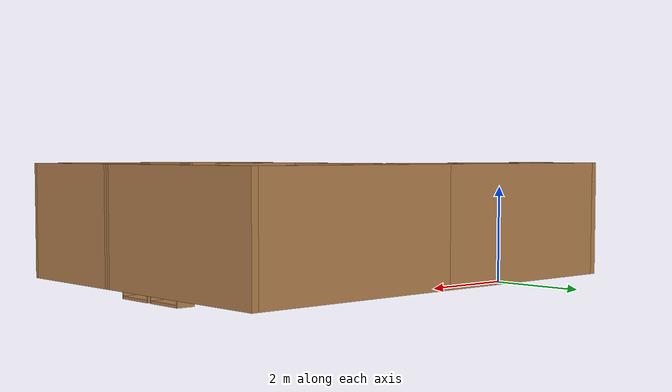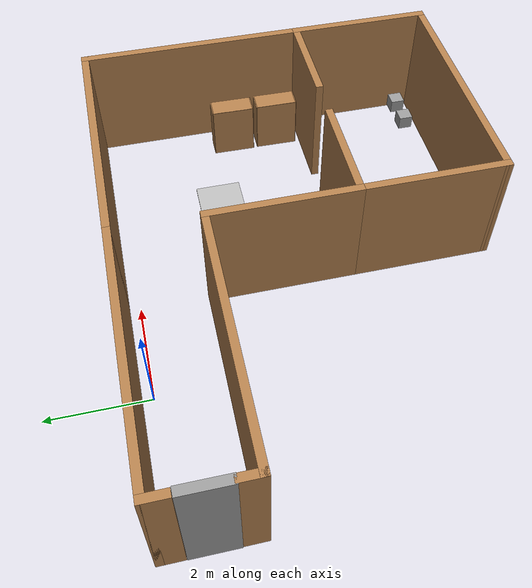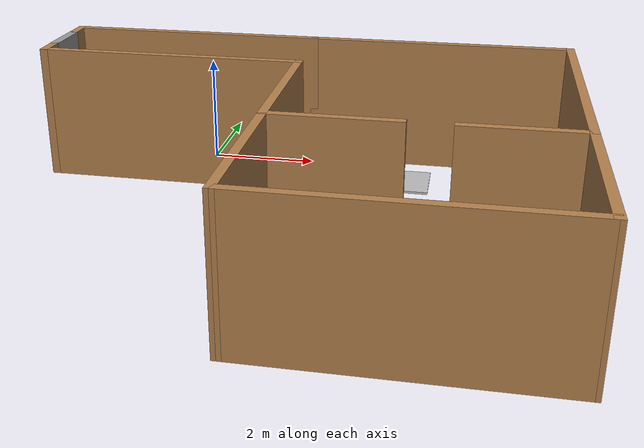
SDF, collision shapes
<?xml version='1.0'?>
<sdf version='1.7'>
  <model name='Environment'>
    <pose>2 -2.5 0 0 -0 0</pose>
    <link name='Door_0'>
      <collision name='Door_0_Collision'>
        <geometry>
          <box>
            <size>0.9 0.17 2.5</size>
          </box>
        </geometry>
        <pose>0 0 1.25 0 -0 0</pose>
      </collision>
      <visual name='Door_0_Visual'>
        <pose>0 0 1.25 0 -0 0</pose>
        <geometry>
          <box>
            <size>0.9 0.17 2.5</size>
          </box>
        </geometry>
        <material>
          <script>
            <uri>file://media/materials/scripts/gazebo.material</uri>
            <name>Gazebo/Grey</name>
          </script>
        </material>
      </visual>
      <pose>-4.84821 1.90659 0 0 -0 1.56538</pose>
    </link>
    <link name='Wall_0'>
      <collision name='Wall_0_Collision'>
        <geometry>
          <box>
            <size>5 0.15 2.5</size>
          </box>
        </geometry>
        <pose>0 0 1.25 0 -0 0</pose>
      </collision>
      <visual name='Wall_0_Visual'>
        <pose>0 0 1.25 0 -0 0</pose>
        <geometry>
          <box>
            <size>5 0.15 2.5</size>
          </box>
        </geometry>
        <material>
          <script>
            <uri>file://media/materials/scripts/gazebo.material</uri>
            <name>Gazebo/Wood</name>
          </script>
          <ambient>1 1 1 1</ambient>
        </material>
        <meta>
          <layer>0</layer>
        </meta>
      </visual>
      <pose>-2.42514 2.78822 0 0 -0 0</pose>
    </link>
    <link name='Wall_11'>
      <collision name='Wall_11_Collision'>
        <geometry>
          <box>
            <size>3 0.15 2.5</size>
          </box>
        </geometry>
        <pose>0 0 1.25 0 -0 0</pose>
      </collision>
      <visual name='Wall_11_Visual'>
        <pose>0 0 1.25 0 -0 0</pose>
        <geometry>
          <box>
            <size>3 0.15 2.5</size>
          </box>
        </geometry>
        <material>
          <script>
            <uri>file://media/materials/scripts/gazebo.material</uri>
            <name>Gazebo/Wood</name>
          </script>
          <ambient>1 1 1 1</ambient>
        </material>
        <meta>
          <layer>0</layer>
        </meta>
      </visual>
      <pose>0.000787 -0.348201 0 0 -0 -1.5708</pose>
    </link>
    <link name='Wall_12'>
      <collision name='Wall_12_Collision'>
        <geometry>
          <box>
            <size>2.25 0.15 2.5</size>
          </box>
        </geometry>
        <pose>0 0 1.25 0 -0 0</pose>
      </collision>
      <visual name='Wall_12_Visual'>
        <pose>0 0 1.25 0 -0 0</pose>
        <geometry>
          <box>
            <size>2.25 0.15 2.5</size>
          </box>
        </geometry>
        <material>
          <script>
            <uri>file://media/materials/scripts/gazebo.material</uri>
            <name>Gazebo/Wood</name>
          </script>
          <ambient>1 1 1 1</ambient>
        </material>
        <meta>
          <layer>0</layer>
        </meta>
      </visual>
      <pose>1.05082 -1.77299 0 0 -0 0.000202</pose>
    </link>
    <link name='Wall_14'>
      <collision name='Wall_14_Collision'>
        <geometry>
          <box>
            <size>4.71 0.15 2.5</size>
          </box>
        </geometry>
        <pose>0 0 1.25 0 -0 0</pose>
      </collision>
      <visual name='Wall_14_Visual'>
        <pose>0 0 1.25 0 -0 0</pose>
        <geometry>
          <box>
            <size>4.71 0.15 2.5</size>
          </box>
        </geometry>
        <material>
          <script>
            <uri>file://media/materials/scripts/gazebo.material</uri>
            <name>Gazebo/Wood</name>
          </script>
          <ambient>1 1 1 1</ambient>
        </material>
        <meta>
          <layer>0</layer>
        </meta>
      </visual>
      <pose>4.84986 0.508223 0 0 -0 -1.5708</pose>
    </link>
    <link name='Wall_16'>
      <collision name='Wall_16_Collision'>
        <geometry>
          <box>
            <size>2.04903 0.15 2.5</size>
          </box>
        </geometry>
        <pose>0 0 1.25 0 -0 0</pose>
      </collision>
      <visual name='Wall_16_Visual'>
        <pose>0 0 1.25 0 -0 0</pose>
        <geometry>
          <box>
            <size>2.04903 0.15 2.5</size>
          </box>
        </geometry>
        <material>
          <script>
            <uri>file://media/materials/scripts/gazebo.material</uri>
            <name>Gazebo/Wood</name>
          </script>
          <ambient>1 1 1 1</ambient>
        </material>
        <meta>
          <layer>0</layer>
        </meta>
      </visual>
      <pose>3.90036 -1.77528 0 0 -0 0.003686</pose>
    </link>
    <link name='Wall_19'>
      <collision name='Wall_19_Collision'>
        <geometry>
          <box>
            <size>3 0.15 2.5</size>
          </box>
        </geometry>
        <pose>0 0 1.25 0 -0 0</pose>
      </collision>
      <visual name='Wall_19_Visual'>
        <pose>0 0 1.25 0 -0 0</pose>
        <geometry>
          <box>
            <size>3 0.15 2.5</size>
          </box>
        </geometry>
        <material>
          <script>
            <uri>file://media/materials/scripts/gazebo.material</uri>
            <name>Gazebo/Wood</name>
          </script>
          <ambient>1 1 1 1</ambient>
        </material>
        <meta>
          <layer>0</layer>
        </meta>
      </visual>
      <pose>0.000787 -3.1982 0 0 -0 -1.5708</pose>
    </link>
    <link name='Wall_2'>
      <collision name='Wall_2_Collision'>
        <geometry>
          <box>
            <size>0.5 0.15 2.5</size>
          </box>
        </geometry>
        <pose>0 0 1.25 0 -0 0</pose>
      </collision>
      <visual name='Wall_2_Visual'>
        <pose>0 0 1.25 0 -0 0</pose>
        <geometry>
          <box>
            <size>0.5 0.15 2.5</size>
          </box>
        </geometry>
        <material>
          <script>
            <uri>file://media/materials/scripts/gazebo.material</uri>
            <name>Gazebo/Wood</name>
          </script>
          <ambient>1 1 1 1</ambient>
        </material>
        <meta>
          <layer>0</layer>
        </meta>
      </visual>
      <pose>-4.85014 2.61322 0 0 -0 -1.5708</pose>
    </link>
    <link name='Wall_21'>
      <collision name='Wall_21_Collision'>
        <geometry>
          <box>
            <size>3 0.15 2.5</size>
          </box>
        </geometry>
        <pose>0 0 1.25 0 -0 0</pose>
      </collision>
      <visual name='Wall_21_Visual'>
        <pose>0 0 1.25 0 -0 0</pose>
        <geometry>
          <box>
            <size>3 0.15 2.5</size>
          </box>
        </geometry>
        <material>
          <script>
            <uri>file://media/materials/scripts/gazebo.material</uri>
            <name>Gazebo/Wood</name>
          </script>
          <ambient>1 1 1 1</ambient>
        </material>
        <meta>
          <layer>0</layer>
        </meta>
      </visual>
      <pose>4.84986 -3.19678 0 0 -0 -1.5708</pose>
    </link>
    <link name='Wall_22'>
      <collision name='Wall_22_Collision'>
        <geometry>
          <box>
            <size>4.99907 0.15 2.5</size>
          </box>
        </geometry>
        <pose>0 0 1.25 0 -0 0</pose>
      </collision>
      <visual name='Wall_22_Visual'>
        <pose>0 0 1.25 0 -0 0</pose>
        <geometry>
          <box>
            <size>4.99907 0.15 2.5</size>
          </box>
        </geometry>
        <material>
          <script>
            <uri>file://media/materials/scripts/gazebo.material</uri>
            <name>Gazebo/Wood</name>
          </script>
          <ambient>1 1 1 1</ambient>
        </material>
        <meta>
          <layer>0</layer>
        </meta>
      </visual>
      <pose>2.42532 -4.62249 0 0 -0 -3.1413</pose>
    </link>
    <link name='Wall_4'>
      <collision name='Wall_4_Collision'>
        <geometry>
          <box>
            <size>0.5 0.15 2.5</size>
          </box>
        </geometry>
        <pose>0 0 1.25 0 -0 0</pose>
      </collision>
      <visual name='Wall_4_Visual'>
        <pose>0 0 1.25 0 -0 0</pose>
        <geometry>
          <box>
            <size>0.5 0.15 2.5</size>
          </box>
        </geometry>
        <material>
          <script>
            <uri>file://media/materials/scripts/gazebo.material</uri>
            <name>Gazebo/Wood</name>
          </script>
          <ambient>1 1 1 1</ambient>
        </material>
        <meta>
          <layer>0</layer>
        </meta>
      </visual>
      <pose>-4.84921 1.2518 0 0 -0 -1.5708</pose>
    </link>
    <link name='Wall_6'>
      <collision name='Wall_6_Collision'>
        <geometry>
          <box>
            <size>5 0.15 2.5</size>
          </box>
        </geometry>
        <pose>0 0 1.25 0 -0 0</pose>
      </collision>
      <visual name='Wall_6_Visual'>
        <pose>0 0 1.25 0 -0 0</pose>
        <geometry>
          <box>
            <size>5 0.15 2.5</size>
          </box>
        </geometry>
        <material>
          <script>
            <uri>file://media/materials/scripts/gazebo.material</uri>
            <name>Gazebo/Wood</name>
          </script>
          <ambient>1 1 1 1</ambient>
        </material>
        <meta>
          <layer>0</layer>
        </meta>
      </visual>
      <pose>-2.42421 1.0768 0 0 -0 0</pose>
    </link>
    <link name='Wall_8'>
      <collision name='Wall_8_Collision'>
        <geometry>
          <box>
            <size>5 0.15 2.5</size>
          </box>
        </geometry>
        <pose>0 0 1.25 0 -0 0</pose>
      </collision>
      <visual name='Wall_8_Visual'>
        <pose>0 0 1.25 0 -0 0</pose>
        <geometry>
          <box>
            <size>5 0.15 2.5</size>
          </box>
        </geometry>
        <material>
          <script>
            <uri>file://media/materials/scripts/gazebo.material</uri>
            <name>Gazebo/Wood</name>
          </script>
          <ambient>1 1 1 1</ambient>
        </material>
        <meta>
          <layer>0</layer>
        </meta>
      </visual>
      <pose>2.42486 2.78822 0 0 -0 0</pose>
    </link>
    <link name='link_0'>
      <inertial>
        <mass>2.49674</mass>
        <inertia>
          <ixx>1.50505</ixx>
          <ixy>0</ixy>
          <ixz>0</ixz>
          <iyy>0.416123</iyy>
          <iyz>0</iyz>
          <izz>1.50505</izz>
        </inertia>
        <pose>0 0 0 0 -0 0</pose>
      </inertial>
      <pose>0.6 -0.3 0.3 0 -0 0</pose>
      <visual name='visual'>
        <pose>0 0 0 0 -0 0</pose>
        <geometry>
          <box>
            <size>1 2.49673 1</size>
          </box>
        </geometry>
        <material>
          <lighting>1</lighting>
          <script>
            <uri>file://media/materials/scripts/gazebo.material</uri>
            <name>Gazebo/Grey</name>
          </script>
          <shader type='pixel'/>
        </material>
        <transparency>0</transparency>
        <cast_shadows>1</cast_shadows>
      </visual>
      <collision name='collision'>
        <laser_retro>0</laser_retro>
        <max_contacts>10</max_contacts>
        <pose>0 0 0 0 -0 0</pose>
        <geometry>
          <box>
            <size>1 2.49673 1</size>
          </box>
        </geometry>
        <surface>
          <friction>
            <ode>
              <mu>1</mu>
              <mu2>1</mu2>
              <fdir1>0 0 0</fdir1>
              <slip1>0</slip1>
              <slip2>0</slip2>
            </ode>
            <torsional>
              <coefficient>1</coefficient>
              <patch_radius>0</patch_radius>
              <surface_radius>0</surface_radius>
              <use_patch_radius>1</use_patch_radius>
              <ode>
                <slip>0</slip>
              </ode>
            </torsional>
          </friction>
          <bounce>
            <restitution_coefficient>0</restitution_coefficient>
            <threshold>1e+06</threshold>
          </bounce>
          <contact>
            <collide_without_contact>0</collide_without_contact>
            <collide_without_contact_bitmask>1</collide_without_contact_bitmask>
            <collide_bitmask>1</collide_bitmask>
            <ode>
              <soft_cfm>0</soft_cfm>
              <soft_erp>0.2</soft_erp>
              <kp>1e+13</kp>
              <kd>1</kd>
              <max_vel>0.01</max_vel>
              <min_depth>0</min_depth>
            </ode>
            <bullet>
              <split_impulse>1</split_impulse>
              <split_impulse_penetration_threshold>-0.01</split_impulse_penetration_threshold>
              <soft_cfm>0</soft_cfm>
              <soft_erp>0.2</soft_erp>
              <kp>1e+13</kp>
              <kd>1</kd>
            </bullet>
          </contact>
        </surface>
      </collision>
    </link>
    <link name='link_1'>
      <inertial>
        <mass>2.54806</mass>
        <inertia>
          <ixx>1.59096</ixx>
          <ixy>0</ixy>
          <ixz>0</ixz>
          <iyy>0.424677</iyy>
          <iyz>0</iyz>
          <izz>1.59096</izz>
        </inertia>
        <pose>0 0 0 0 -0 0</pose>
      </inertial>
      <pose>0.6 -3.06019 0.3 0 -0 0</pose>
      <visual name='visual'>
        <pose>0 0 0 0 -0 0</pose>
        <geometry>
          <box>
            <size>1 2.54805 1</size>
          </box>
        </geometry>
        <material>
          <lighting>1</lighting>
          <script>
            <uri>file://media/materials/scripts/gazebo.material</uri>
            <name>Gazebo/Grey</name>
          </script>
          <shader type='pixel'/>
        </material>
        <transparency>0</transparency>
        <cast_shadows>1</cast_shadows>
      </visual>
      <collision name='collision'>
        <laser_retro>0</laser_retro>
        <max_contacts>10</max_contacts>
        <pose>0 0 0 0 -0 0</pose>
        <geometry>
          <box>
            <size>1 2.54805 1</size>
          </box>
        </geometry>
        <surface>
          <friction>
            <ode>
              <mu>1</mu>
              <mu2>1</mu2>
              <fdir1>0 0 0</fdir1>
              <slip1>0</slip1>
              <slip2>0</slip2>
            </ode>
            <torsional>
              <coefficient>1</coefficient>
              <patch_radius>0</patch_radius>
              <surface_radius>0</surface_radius>
              <use_patch_radius>1</use_patch_radius>
              <ode>
                <slip>0</slip>
              </ode>
            </torsional>
          </friction>
          <bounce>
            <restitution_coefficient>0</restitution_coefficient>
            <threshold>1e+06</threshold>
          </bounce>
          <contact>
            <collide_without_contact>0</collide_without_contact>
            <collide_without_contact_bitmask>1</collide_without_contact_bitmask>
            <collide_bitmask>1</collide_bitmask>
            <ode>
              <soft_cfm>0</soft_cfm>
              <soft_erp>0.2</soft_erp>
              <kp>1e+13</kp>
              <kd>1</kd>
              <max_vel>0.01</max_vel>
              <min_depth>0</min_depth>
            </ode>
            <bullet>
              <split_impulse>1</split_impulse>
              <split_impulse_penetration_threshold>-0.01</split_impulse_penetration_threshold>
              <soft_cfm>0</soft_cfm>
              <soft_erp>0.2</soft_erp>
              <kp>1e+13</kp>
              <kd>1</kd>
            </bullet>
          </contact>
        </surface>
      </collision>
    </link>
    <model name='bookshelf'>
      <static>1</static>
      <link name='link'>
        <inertial>
          <mass>1</mass>
        </inertial>
        <collision name='back'>
          <pose>0 0.005 0.6 0 -0 0</pose>
          <geometry>
            <box>
              <size>0.9 0.01 1.2</size>
            </box>
          </geometry>
        </collision>
        <visual name='visual1'>
          <pose>0 0.005 0.6 0 -0 0</pose>
          <geometry>
            <box>
              <size>0.9 0.01 1.2</size>
            </box>
          </geometry>
          <material>
            <script>
              <uri>file://media/materials/scripts/gazebo.material</uri>
              <name>Gazebo/Wood</name>
            </script>
          </material>
        </visual>
        <collision name='left_side'>
          <pose>0.45 -0.195 0.6 0 -0 0</pose>
          <geometry>
            <box>
              <size>0.02 0.4 1.2</size>
            </box>
          </geometry>
        </collision>
        <visual name='visual2'>
          <pose>0.45 -0.195 0.6 0 -0 0</pose>
          <geometry>
            <box>
              <size>0.02 0.4 1.2</size>
            </box>
          </geometry>
          <material>
            <script>
              <uri>file://media/materials/scripts/gazebo.material</uri>
              <name>Gazebo/Wood</name>
            </script>
          </material>
        </visual>
        <collision name='right_side'>
          <pose>-0.45 -0.195 0.6 0 -0 0</pose>
          <geometry>
            <box>
              <size>0.02 0.4 1.2</size>
            </box>
          </geometry>
        </collision>
        <visual name='visual3'>
          <pose>-0.45 -0.195 0.6 0 -0 0</pose>
          <geometry>
            <box>
              <size>0.02 0.4 1.2</size>
            </box>
          </geometry>
          <material>
            <script>
              <uri>file://media/materials/scripts/gazebo.material</uri>
              <name>Gazebo/Wood</name>
            </script>
          </material>
        </visual>
        <collision name='bottom'>
          <pose>0 -0.195 0.03 0 -0 0</pose>
          <geometry>
            <box>
              <size>0.88 0.4 0.06</size>
            </box>
          </geometry>
        </collision>
        <visual name='visual4'>
          <pose>0 -0.195 0.03 0 -0 0</pose>
          <geometry>
            <box>
              <size>0.88 0.4 0.06</size>
            </box>
          </geometry>
          <material>
            <script>
              <uri>file://media/materials/scripts/gazebo.material</uri>
              <name>Gazebo/Wood</name>
            </script>
          </material>
        </visual>
        <collision name='top'>
          <pose>0 -0.195 1.19 0 -0 0</pose>
          <geometry>
            <box>
              <size>0.88 0.4 0.02</size>
            </box>
          </geometry>
        </collision>
        <visual name='visual5'>
          <pose>0 -0.195 1.19 0 -0 0</pose>
          <geometry>
            <box>
              <size>0.88 0.4 0.02</size>
            </box>
          </geometry>
          <material>
            <script>
              <uri>file://media/materials/scripts/gazebo.material</uri>
              <name>Gazebo/Wood</name>
            </script>
          </material>
        </visual>
        <collision name='low_shelf'>
          <pose>0 -0.195 0.43 0 -0 0</pose>
          <geometry>
            <box>
              <size>0.88 0.4 0.02</size>
            </box>
          </geometry>
        </collision>
        <visual name='visual6'>
          <pose>0 -0.195 0.43 0 -0 0</pose>
          <geometry>
            <box>
              <size>0.88 0.4 0.02</size>
            </box>
          </geometry>
          <material>
            <script>
              <uri>file://media/materials/scripts/gazebo.material</uri>
              <name>Gazebo/Wood</name>
            </script>
          </material>
        </visual>
        <collision name='high_shelf'>
          <pose>0 -0.195 0.8 0 -0 0</pose>
          <geometry>
            <box>
              <size>0.88 0.4 0.02</size>
            </box>
          </geometry>
        </collision>
        <visual name='visual7'>
          <pose>0 -0.195 0.8 0 -0 0</pose>
          <geometry>
            <box>
              <size>0.88 0.4 0.02</size>
            </box>
          </geometry>
          <material>
            <script>
              <uri>file://media/materials/scripts/gazebo.material</uri>
              <name>Gazebo/Wood</name>
            </script>
          </material>
        </visual>
      </link>
      <pose>4.25 -1.2 -0.2 0 -0 1.55614</pose>
    </model>
    <model name='bookshelf_clone'>
      <static>1</static>
      <link name='link'>
        <inertial>
          <mass>1</mass>
        </inertial>
        <collision name='back'>
          <pose>0 0.005 0.6 0 -0 0</pose>
          <geometry>
            <box>
              <size>0.9 0.01 1.2</size>
            </box>
          </geometry>
        </collision>
        <visual name='visual1'>
          <pose>0 0.005 0.6 0 -0 0</pose>
          <geometry>
            <box>
              <size>0.9 0.01 1.2</size>
            </box>
          </geometry>
          <material>
            <script>
              <uri>file://media/materials/scripts/gazebo.material</uri>
              <name>Gazebo/Wood</name>
            </script>
          </material>
        </visual>
        <collision name='left_side'>
          <pose>0.45 -0.195 0.6 0 -0 0</pose>
          <geometry>
            <box>
              <size>0.02 0.4 1.2</size>
            </box>
          </geometry>
        </collision>
        <visual name='visual2'>
          <pose>0.45 -0.195 0.6 0 -0 0</pose>
          <geometry>
            <box>
              <size>0.02 0.4 1.2</size>
            </box>
          </geometry>
          <material>
            <script>
              <uri>file://media/materials/scripts/gazebo.material</uri>
              <name>Gazebo/Wood</name>
            </script>
          </material>
        </visual>
        <collision name='right_side'>
          <pose>-0.45 -0.195 0.6 0 -0 0</pose>
          <geometry>
            <box>
              <size>0.02 0.4 1.2</size>
            </box>
          </geometry>
        </collision>
        <visual name='visual3'>
          <pose>-0.45 -0.195 0.6 0 -0 0</pose>
          <geometry>
            <box>
              <size>0.02 0.4 1.2</size>
            </box>
          </geometry>
          <material>
            <script>
              <uri>file://media/materials/scripts/gazebo.material</uri>
              <name>Gazebo/Wood</name>
            </script>
          </material>
        </visual>
        <collision name='bottom'>
          <pose>0 -0.195 0.03 0 -0 0</pose>
          <geometry>
            <box>
              <size>0.88 0.4 0.06</size>
            </box>
          </geometry>
        </collision>
        <visual name='visual4'>
          <pose>0 -0.195 0.03 0 -0 0</pose>
          <geometry>
            <box>
              <size>0.88 0.4 0.06</size>
            </box>
          </geometry>
          <material>
            <script>
              <uri>file://media/materials/scripts/gazebo.material</uri>
              <name>Gazebo/Wood</name>
            </script>
          </material>
        </visual>
        <collision name='top'>
          <pose>0 -0.195 1.19 0 -0 0</pose>
          <geometry>
            <box>
              <size>0.88 0.4 0.02</size>
            </box>
          </geometry>
        </collision>
        <visual name='visual5'>
          <pose>0 -0.195 1.19 0 -0 0</pose>
          <geometry>
            <box>
              <size>0.88 0.4 0.02</size>
            </box>
          </geometry>
          <material>
            <script>
              <uri>file://media/materials/scripts/gazebo.material</uri>
              <name>Gazebo/Wood</name>
            </script>
          </material>
        </visual>
        <collision name='low_shelf'>
          <pose>0 -0.195 0.43 0 -0 0</pose>
          <geometry>
            <box>
              <size>0.88 0.4 0.02</size>
            </box>
          </geometry>
        </collision>
        <visual name='visual6'>
          <pose>0 -0.195 0.43 0 -0 0</pose>
          <geometry>
            <box>
              <size>0.88 0.4 0.02</size>
            </box>
          </geometry>
          <material>
            <script>
              <uri>file://media/materials/scripts/gazebo.material</uri>
              <name>Gazebo/Wood</name>
            </script>
          </material>
        </visual>
        <collision name='high_shelf'>
          <pose>0 -0.195 0.8 0 -0 0</pose>
          <geometry>
            <box>
              <size>0.88 0.4 0.02</size>
            </box>
          </geometry>
        </collision>
        <visual name='visual7'>
          <pose>0 -0.195 0.8 0 -0 0</pose>
          <geometry>
            <box>
              <size>0.88 0.4 0.02</size>
            </box>
          </geometry>
          <material>
            <script>
              <uri>file://media/materials/scripts/gazebo.material</uri>
              <name>Gazebo/Wood</name>
            </script>
          </material>
        </visual>
      </link>
      <pose>4.25 -0.2 -0.2 0 -0 1.55614</pose>
    </model>
    <model name='cafe_table'>
      <static>1</static>
      <link name='link'>
        <collision name='surface'>
          <pose>0 0 0.755 0 -0 0</pose>
          <geometry>
            <box>
              <size>0.913 0.913 0.04</size>
            </box>
          </geometry>
        </collision>
        <collision name='column'>
          <pose>0 0 0.37 0 -0 0</pose>
          <geometry>
            <box>
              <size>0.042 0.042 0.74</size>
            </box>
          </geometry>
        </collision>
        <collision name='base'>
          <pose>0 0 0.02 0 -0 0</pose>
          <geometry>
            <box>
              <size>0.56 0.56 0.04</size>
            </box>
          </geometry>
        </collision>
        <visual name='visual'>
          <geometry>
            <mesh>
              <uri>model://cafe_table/meshes/cafe_table.dae</uri>
            </mesh>
          </geometry>
        </visual>
      </link>
      <pose>2 0.5 -0.2 0 -0 0</pose>
    </model>
    <link name='bowl_1'>
      <inertial>
        <mass>0.54806</mass>
        <inertia>
          <ixx>0.59096</ixx>
          <ixy>0</ixy>
          <ixz>0</ixz>
          <iyy>0.424677</iyy>
          <iyz>0</iyz>
          <izz>0.59096</izz>
        </inertia>
        <pose>0 0 0 0 -0 0</pose>
      </inertial>
      <pose>4.5 -4.2 0.3 0 -0 0</pose>
      <visual name='visual'>
        <pose>0 0 0 0 -0 0</pose>
        <geometry>
          <box>
            <size>0.3 0.3 0.3</size>
          </box>
        </geometry>
        <material>
          <lighting>1</lighting>
          <script>
            <uri>file://media/materials/scripts/gazebo.material</uri>
            <name>Gazebo/Grey</name>
          </script>
          <shader type='pixel'/>
        </material>
        <transparency>0</transparency>
        <cast_shadows>1</cast_shadows>
      </visual>
      <collision name='collision'>
        <laser_retro>0</laser_retro>
        <max_contacts>10</max_contacts>
        <pose>0 0 0 0 -0 0</pose>
        <geometry>
          <box>
            <size>0.3 0.3 0.3</size>
          </box>
        </geometry>
        <surface>
          <friction>
            <ode>
              <mu>1</mu>
              <mu2>1</mu2>
              <fdir1>0 0 0</fdir1>
              <slip1>0</slip1>
              <slip2>0</slip2>
            </ode>
            <torsional>
              <coefficient>1</coefficient>
              <patch_radius>0</patch_radius>
              <surface_radius>0</surface_radius>
              <use_patch_radius>1</use_patch_radius>
              <ode>
                <slip>0</slip>
              </ode>
            </torsional>
          </friction>
          <bounce>
            <restitution_coefficient>0</restitution_coefficient>
            <threshold>1e+06</threshold>
          </bounce>
          <contact>
            <collide_without_contact>0</collide_without_contact>
            <collide_without_contact_bitmask>1</collide_without_contact_bitmask>
            <collide_bitmask>1</collide_bitmask>
            <ode>
              <soft_cfm>0</soft_cfm>
              <soft_erp>0.2</soft_erp>
              <kp>1e+13</kp>
              <kd>1</kd>
              <max_vel>0.01</max_vel>
              <min_depth>0</min_depth>
            </ode>
            <bullet>
              <split_impulse>1</split_impulse>
              <split_impulse_penetration_threshold>-0.01</split_impulse_penetration_threshold>
              <soft_cfm>0</soft_cfm>
              <soft_erp>0.2</soft_erp>
              <kp>1e+13</kp>
              <kd>1</kd>
            </bullet>
          </contact>
        </surface>
      </collision>
    </link>
    <link name='bowl_2'>
      <inertial>
        <mass>0.54806</mass>
        <inertia>
          <ixx>0.59096</ixx>
          <ixy>0</ixy>
          <ixz>0</ixz>
          <iyy>0.424677</iyy>
          <iyz>0</iyz>
          <izz>0.59096</izz>
        </inertia>
        <pose>0 0 0 0 -0 0</pose>
      </inertial>
      <pose>3.9 -4.2 0.3 0 -0 0</pose>
      <visual name='visual'>
        <pose>0 0 0 0 -0 0</pose>
        <geometry>
          <box>
            <size>0.3 0.3 0.3</size>
          </box>
        </geometry>
        <material>
          <lighting>1</lighting>
          <script>
            <uri>file://media/materials/scripts/gazebo.material</uri>
            <name>Gazebo/Grey</name>
          </script>
          <shader type='pixel'/>
        </material>
        <transparency>0</transparency>
        <cast_shadows>1</cast_shadows>
      </visual>
      <collision name='collision'>
        <laser_retro>0</laser_retro>
        <max_contacts>10</max_contacts>
        <pose>0 0 0 0 -0 0</pose>
        <geometry>
          <box>
            <size>0.3 0.3 0.3</size>
          </box>
        </geometry>
        <surface>
          <friction>
            <ode>
              <mu>1</mu>
              <mu2>1</mu2>
              <fdir1>0 0 0</fdir1>
              <slip1>0</slip1>
              <slip2>0</slip2>
            </ode>
            <torsional>
              <coefficient>1</coefficient>
              <patch_radius>0</patch_radius>
              <surface_radius>0</surface_radius>
              <use_patch_radius>1</use_patch_radius>
              <ode>
                <slip>0</slip>
              </ode>
            </torsional>
          </friction>
          <bounce>
            <restitution_coefficient>0</restitution_coefficient>
            <threshold>1e+06</threshold>
          </bounce>
          <contact>
            <collide_without_contact>0</collide_without_contact>
            <collide_without_contact_bitmask>1</collide_without_contact_bitmask>
            <collide_bitmask>1</collide_bitmask>
            <ode>
              <soft_cfm>0</soft_cfm>
              <soft_erp>0.2</soft_erp>
              <kp>1e+13</kp>
              <kd>1</kd>
              <max_vel>0.01</max_vel>
              <min_depth>0</min_depth>
            </ode>
            <bullet>
              <split_impulse>1</split_impulse>
              <split_impulse_penetration_threshold>-0.01</split_impulse_penetration_threshold>
              <soft_cfm>0</soft_cfm>
              <soft_erp>0.2</soft_erp>
              <kp>1e+13</kp>
              <kd>1</kd>
            </bullet>
          </contact>
        </surface>
      </collision>
    </link>
    <static>0</static>
    <allow_auto_disable>1</allow_auto_disable>
  </model>
</sdf>
